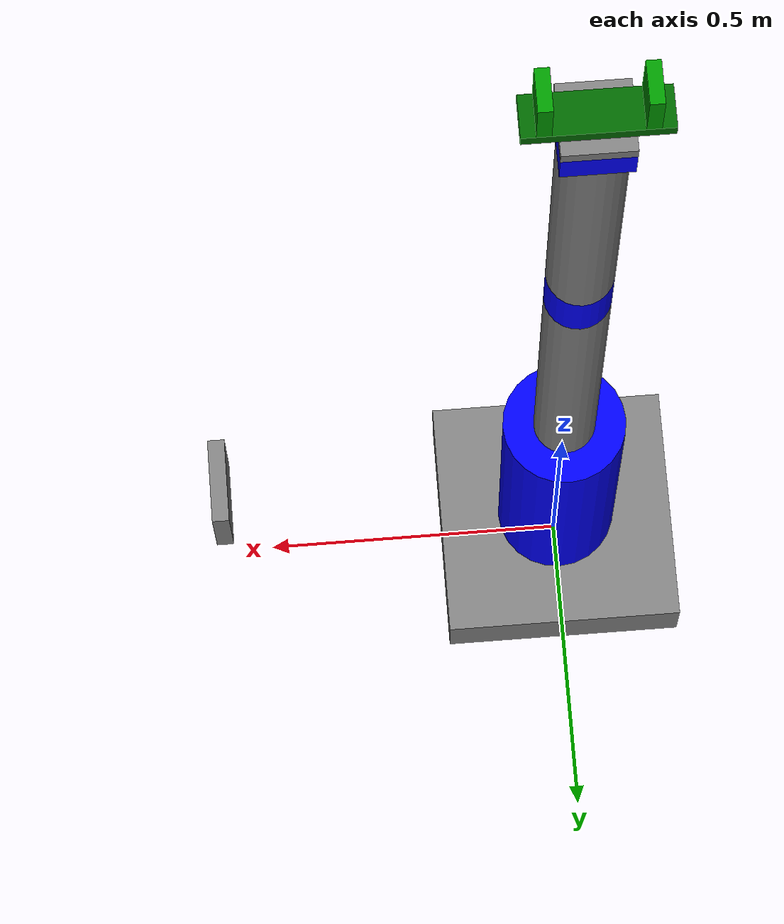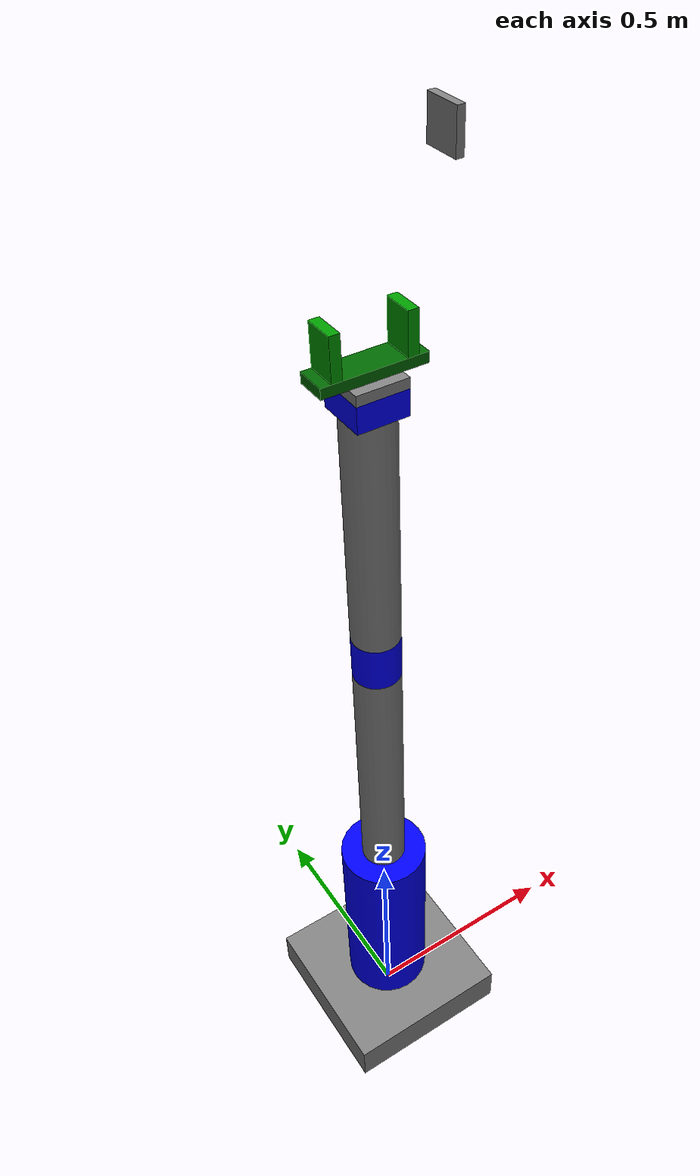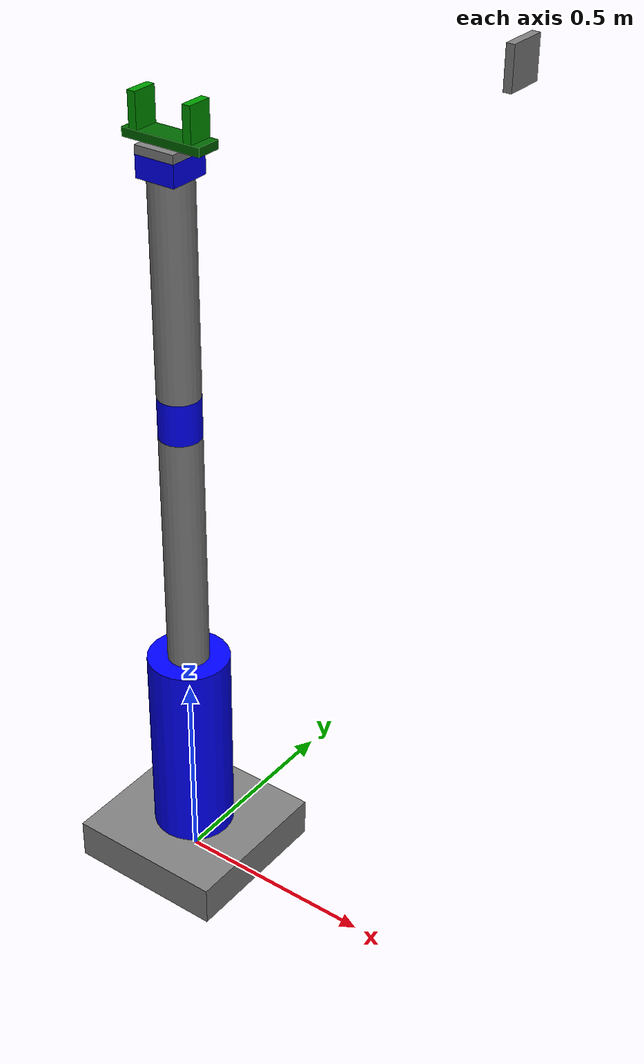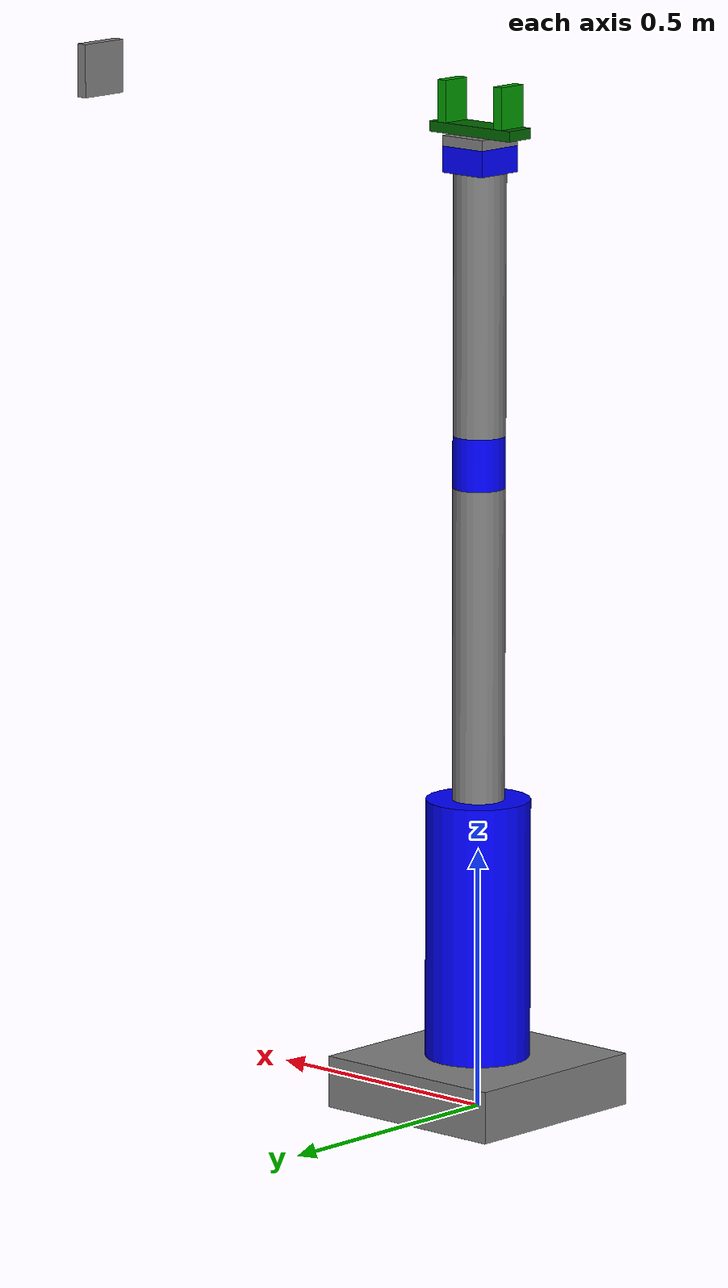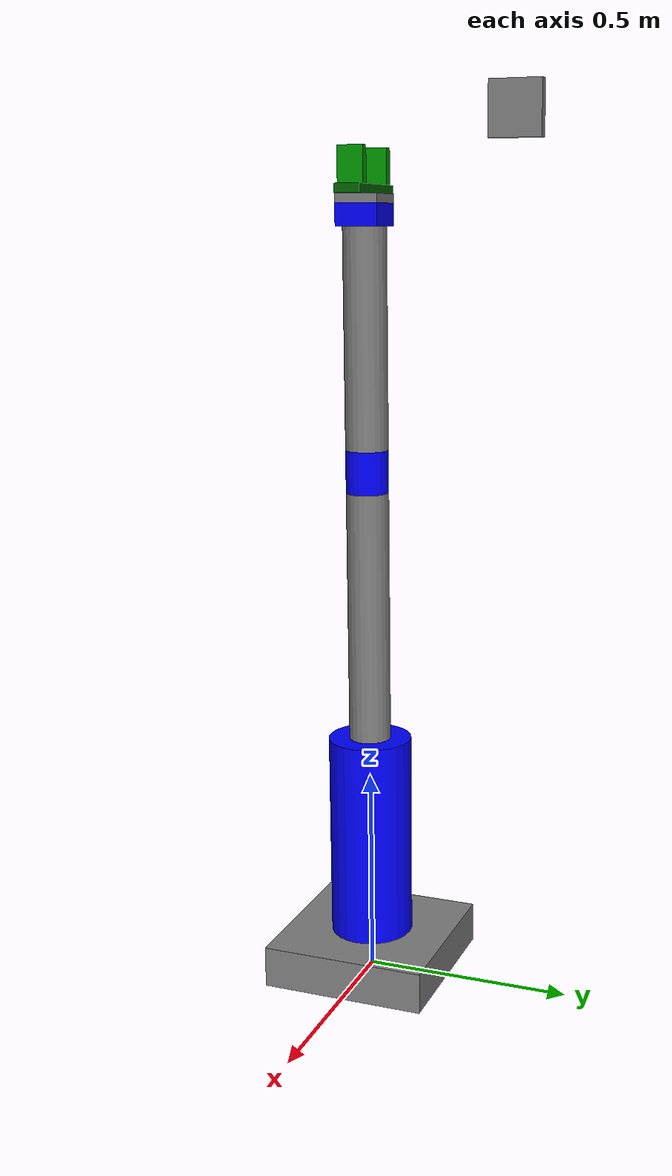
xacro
<?xml version="1.0"?>
<robot name="my_robot" xmlns:xacro="http://www.ros.org/wiki/xacro">

    <xacro:include filename="common_properties.xacro"/>
    <xacro:include filename="arm.xacro"/>
    <xacro:include filename="gripper.xacro"/>
    <xacro:include filename="my_robot.ros2_control.xacro"/>
    <xacro:include filename="6axis_robotic_gazebo.xacro"/>

  <!-- THIS LINE IS CRITICAL -->

    <joint name="base_to_arm_joint" type="fixed">
        <parent link="tool_link"/>
        <child link="gripper_base_link"/>
        <origin xyz="0 0 0" rpy="0 0 0"/>
    </joint>
</robot>

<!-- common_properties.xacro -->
<robot  xmlns:xacro="http://www.ros.org/wiki/xacro">

    <material name="grey">
        <color rgba="0.5 0.5 0.5 1"/>
    </material>

    <material name="blue">
        <color rgba="0 0 1 1"/>
    </material>

    <material name = "dark_green">
        <color rgba="0 0.4 0 1"/>
    </material>

    <material name = "light_green">
        <color rgba="0 0.6 0 1"/>
    </material>

     <xacro:macro name="box_inertia" params="m x y z o_xyz o_rpy">
        <inertial>
            <mass value="${m}" />
            <origin xyz="${o_xyz}" rpy="${o_rpy}" />
            <inertia ixx="${(m/12) * (y*y + z*z)}" ixy="0" ixz="0"
                     iyy="${(m/12) * (x*x + z*z)}" iyz="0"
                     izz="${(m/12) * (x*x + y*y)}" />
        </inertial>
    </xacro:macro>

</robot>

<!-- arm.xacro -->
<robot xmlns:xacro="http://www.ros.org/wiki/xacro">

    <link name="world"/>

    <joint name="world_joint" type="fixed">
        <parent link="world"/>
        <child link="base_link"/>
        <origin xyz="0 0 0" rpy="0 0 0"/>
    </joint>

    <link name="base_link">
        <visual>
            <geometry>
                <box size="0.4 0.4 0.1" />
            </geometry>
            <origin xyz="0 0 0.05" rpy="0 0 0" />
            <material name="grey" />
        </visual>

       <xacro:box_inertia m="5.0" x="0.4" y="0.4" z="0.1"
                           o_xyz="0 0 0.05" o_rpy="0 0 0" />

        <collision>
            <geometry>
                <box size="0.4 0.4 0.1" />
            </geometry>
            <origin xyz="0 0 0.05" rpy="0 0 0" />
        </collision>
    </link>

    <link name="shoulder_link">
        <visual>
            <geometry>
                <cylinder length="0.5" radius="0.1" />
            </geometry>
            <origin xyz="0 0 0.25" rpy="0 0 0" />
            <material name="blue" />
        </visual>

        <collision>
            <geometry>
                <box size="0.2 0.2 0.5"/>
            </geometry>
            <origin xyz="0 0 0.25" rpy="0 0 0" />
        </collision>

       <xacro:box_inertia m="5.0" x="0.2" y="0.2" z="0.5"
                           o_xyz="0 0 0.25" o_rpy="0 0 0" />
    </link>

    <link name="arm_link">
        <visual>
            <geometry>
                <cylinder length="0.6" radius="0.05" />
            </geometry>
            <origin xyz="0 0 0.3" rpy="0 0 0" />
            <material name="grey" />
        </visual>
        <collision>
            <geometry>
                <box size="0.1 0.1 0.6" />
            </geometry>
            <origin xyz="0 0 0.3" rpy="0 0 0" />
        </collision>

        <xacro:box_inertia m="5.0" x="0.1" y="0.1" z="0.6"
                           o_xyz="0 0 0.3" o_rpy="0 0 0" />

    </link>

    <link name="elbow_link">
        <visual>
            <geometry>
                <cylinder length="0.1" radius="0.05" />
            </geometry>
            <origin xyz="0 0 0.05" rpy="0 0 0" />
            <material name="blue" />
        </visual>
        <collision>
            <geometry>
                <box size="0.1 0.1 0.1" />
            </geometry>
            <origin xyz="0 0 0.05" rpy="0 0 0" />
        </collision>

          <xacro:box_inertia m="5.0" x="0.1" y="0.1" z="0.1"
                           o_xyz="0 0 0.05" o_rpy="0 0 0" />

    </link>

    <link name="forearm_link">
        <visual>
            <geometry>
                <cylinder length="0.5" radius="0.05" />
            </geometry>
            <origin xyz="0 0 0.25" rpy="0 0 0" />
            <material name="grey" />
        </visual>
        <collision>
            <geometry>
                <box size="0.1 0.1 0.5" />
            </geometry>
            <origin xyz="0 0 0.25" rpy="0 0 0" />
        </collision>

        <xacro:box_inertia m="5.0" x="0.1" y="0.1" z="0.5"
                           o_xyz="0 0 0.25" o_rpy="0 0 0" />

    </link>

    <link name="wrist_link">
        <visual>
            <geometry>
                <box size="0.1 0.1 0.05" />
            </geometry>
            <origin xyz="0 0 0.025" rpy="0 0 0" />
            <material name="blue" />
        </visual>
        <collision>
            <geometry>
                <box size="0.1 0.1 0.05" />
            </geometry>
            <origin xyz="0 0 0.025" rpy="0 0 0" />
        </collision>

          <xacro:box_inertia m="5.0" x="0.1" y="0.1" z="0.05"
                           o_xyz="0 0 0.05" o_rpy="0 0 0" />
    </link>

    <link name="hand_link">
        <visual>
            <geometry>
                <box size="0.1 0.1 0.02" />
            </geometry>
            <origin xyz="0 0 0.01" rpy="0 0 0" />
            <material name="grey" />
        </visual>
        <collision>
            <geometry>
                <box size="0.1 0.1 0.02" />
            </geometry>
            <origin xyz="0 0 0.01" rpy="0 0 0" />
        </collision>

        <xacro:box_inertia m="5.0" x="0.1" y="0.1" z="0.02"
                           o_xyz="0 0 0.01" o_rpy="0 0 0" />
    </link>

    <link name="camera_link">
        <visual>
            <geometry>
                <box size="0.1 0.1 0.02"/>
            </geometry>
            <origin xyz="0 0 0" rpy="0 0 0" />
            <material name="grey"/>
        </visual>

        <collision>
            <geometry>
                <box size="0.1 0.1 0.02"/>
            </geometry>
             <origin xyz="0 0 0" rpy="0 0 0"/>
        </collision>
        <xacro:box_inertia m="0.1" x="0.1" y="0.1" z="0.02"
                           o_xyz="0 0 0" o_rpy="0 0 0" />
    </link>
    <link name="tool_link" >
        <inertial>
            <mass value="0.01"/>
            <inertia ixx="0.000001" ixy="0.0" ixz="0.0" iyy="0.000001" iyz="0.0" izz="0.000001"/>
        </inertial>
    </link>

    <joint name="joint1" type="revolute">
        <parent link="base_link" />
        <child link="shoulder_link" />
        <origin xyz="0 0 0.1" rpy="0 0 0" />
        <axis xyz="0 0 1" />
        <limit effort="1000.0" velocity="1.0" lower="-3.14" upper="3.14" />
    </joint>

    <joint name="joint2" type="revolute">
        <parent link="shoulder_link" />
        <child link="arm_link" />
        <origin xyz="0 0 0.5" rpy="0 0 0" />
        <axis xyz="0 1 0" />
        <limit effort="1000.0" velocity="1.0" lower="0" upper="2.5" />
    </joint>

    <joint name="joint3" type="revolute">
        <parent link="arm_link" />
        <child link="elbow_link" />
        <origin xyz="0 0 0.6" rpy="0 0 0" />
        <axis xyz="0 1 0" />
        <limit effort="1000.0" velocity="1.0" lower="0" upper="2.5" />
    </joint>

    <joint name="joint4" type="revolute">
        <parent link="elbow_link" />
        <child link="forearm_link" />
        <origin xyz="0 0 0.1" rpy="0 0 0" />
        <axis xyz="0 0 1" />
        <limit effort="1000.0" velocity="1.0" lower="-3.14" upper="3.14" />
    </joint>

    <joint name="joint5" type="revolute">
        <parent link="forearm_link" />
        <child link="wrist_link" />
        <origin xyz="0 0 0.5" rpy="0 0 0" />
        <axis xyz="0 1 0" />
        <limit effort="1000.0" velocity="1.0" lower="-1.57" upper="1.57" />
    </joint>

    <joint name="joint6" type="continuous">
        <parent link="wrist_link" />
        <child link="hand_link" />
        <origin xyz="0 0 0.05" rpy="0 0 0" />
        <axis xyz="0 0 1" />
        <limit effort="100" velocity="1" />
    </joint>

    <joint name="hand_tool_joint" type="fixed">
        <parent link="hand_link" />
        <child link="tool_link" />
        <origin xyz="0 0 0.02" rpy="0 0 0" />
    </joint>

    <joint name="world_to_camera_joint" type="fixed">
        <parent link="world"/>
        <child link="camera_link"/>
        <origin xyz="0.5 0.5 2.0" rpy="0 1.57 0"/>
    </joint>

    <joint name="camera_optical_joint" type="fixed">
        <parent link="camera_link"/>
        <child link="camera_link_optical"/>
        <origin xyz="0 0 0" rpy="0 1.57 0"/>
    </joint>
    <link name="camera_link_optical">
        <inertial>
            <mass value="0.001"/>
            <inertia ixx="0.0000001" ixy="0.0" ixz="0.0" iyy="0.0000001" iyz="0.0" izz="0.0000001"/>
        </inertial>
    </link>

    <gazebo reference="camera_link">
            <sensor name="camera" type="camera">
                <camera>
                    <horizontal_fov>1.047</horizontal_fov>
                    <image>
                        <width>640</width>
                        <height>480</height>
                        <format>R8G8B8</format>
                    </image>
                    <clip>
                        <near>0.1</near>
                        <far>20</far>
                    </clip>
                <optical_frame_id>camera_link_optical</optical_frame_id>
                <camera_info_topic>camera/camera_info</camera_info_topic>
            </camera>
            <always_on>1</always_on>
            <update_rate>20</update_rate>
            <visualize>true</visualize>
            <topic>camera/image_raw</topic>
        </sensor>
    </gazebo>

</robot>

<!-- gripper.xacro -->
<robot xmlns:xacro="http://www.ros.org/wiki/xacro">

        <link name = "gripper_base_link">
            <visual>
                <geometry>
                    <box size="0.2 0.06 0.02"/>
                </geometry>
                <origin xyz="0 0 0.01 " rpy="0 0 0"/>
                <material name="dark_green"/>
            </visual>
            <collision>
                 <geometry>
                     <box size="0.2 0.06 0.02" />
                 </geometry>
                 <origin xyz="0 0 0.01" rpy="0 0 0" />
            </collision>
             <xacro:box_inertia m="1.0" x="0.2" y="0.06" z="0.02"
                           o_xyz="0 0 0.01" o_rpy="0 0 0" />

        </link>

        <link name="gripper_left_finger_link">
            <visual>
                <geometry>
                    <box size="0.02 0.06 0.08" />
                </geometry>
                <origin xyz="0 0 0.04" rpy="0 0 0" />
                <material name="light_green" />
        </visual>
        <collision>
            <geometry>
                <box size="0.02 0.06 0.08" />
            </geometry>
            <origin xyz="0 0 0.04" rpy="0 0 0" />
        </collision>
         <xacro:box_inertia m="1.0" x="0.02" y="0.06" z="0.08"
                           o_xyz="0 0 0.0" o_rpy="0 0 0" />

    </link>

    <link name="gripper_right_finger_link">
        <visual>
            <geometry>
                <box size="0.02 0.06 0.08" />
            </geometry>
            <origin xyz="0 0 0.04" rpy="0 0 0" />
            <material name="light_green" />
        </visual>
        <collision>
            <geometry>
                <box size="0.02 0.06 0.08" />
            </geometry>
            <origin xyz="0 0 0.04" rpy="0 0 0" />
        </collision>
         <xacro:box_inertia m="1.0" x="0.02" y="0.06" z="0.08"
                           o_xyz="0 0 0.0" o_rpy="0 0 0" />

    </link>

    <joint name="gripper_left_finger_joint" type="prismatic">
        <parent link="gripper_base_link" />
        <child link="gripper_left_finger_link" />
        <origin xyz="-0.07 0 0.02" rpy="0 0 0" />
        <axis xyz="1 0 0" />
        <limit effort="1000.0" velocity="1.0" lower="0.0" upper="0.06" />
    </joint>

      <joint name="gripper_right_finger_joint" type="prismatic">
        <parent link="gripper_base_link" />
        <child link="gripper_right_finger_link" />
        <origin xyz="0.07 0 0.02" rpy="0 0 0" />
        <axis xyz="1 0 0" />
        <limit effort="1000.0" velocity="1.0" lower="-0.06" upper="0.0" />
    </joint>

</robot>
